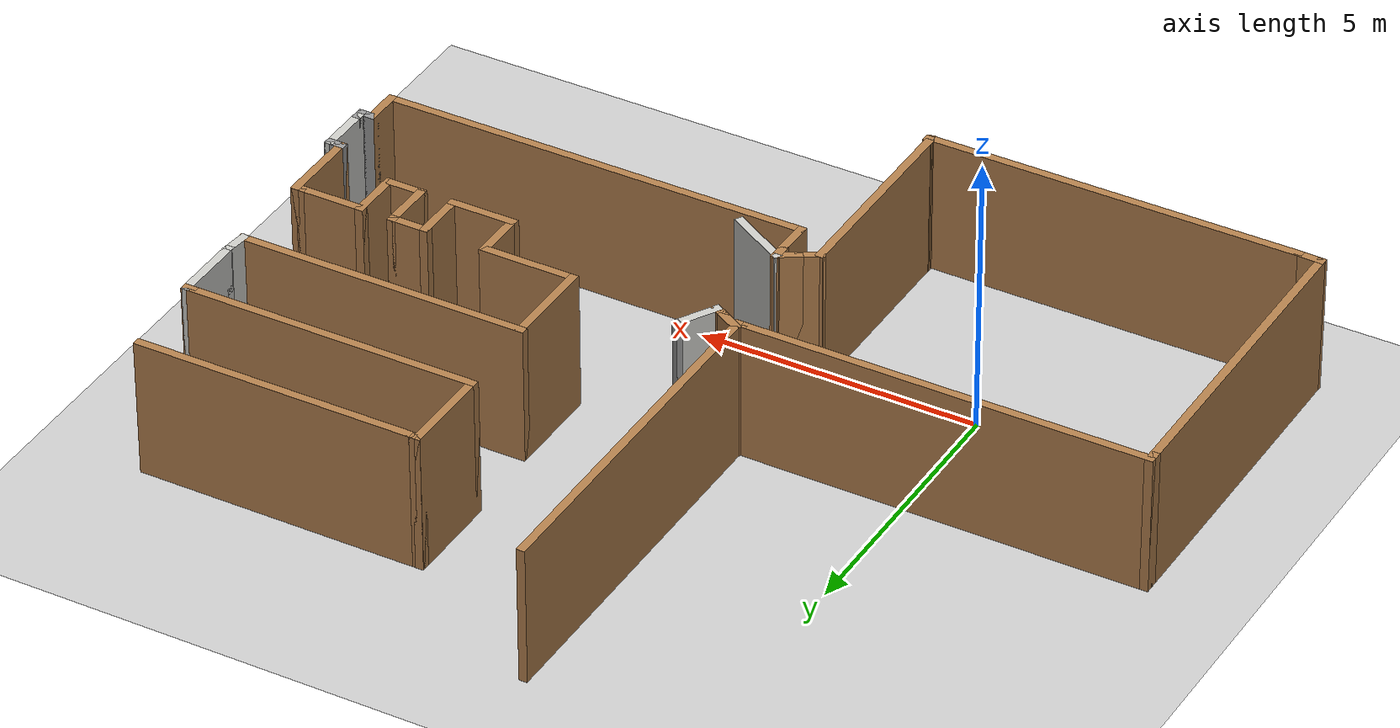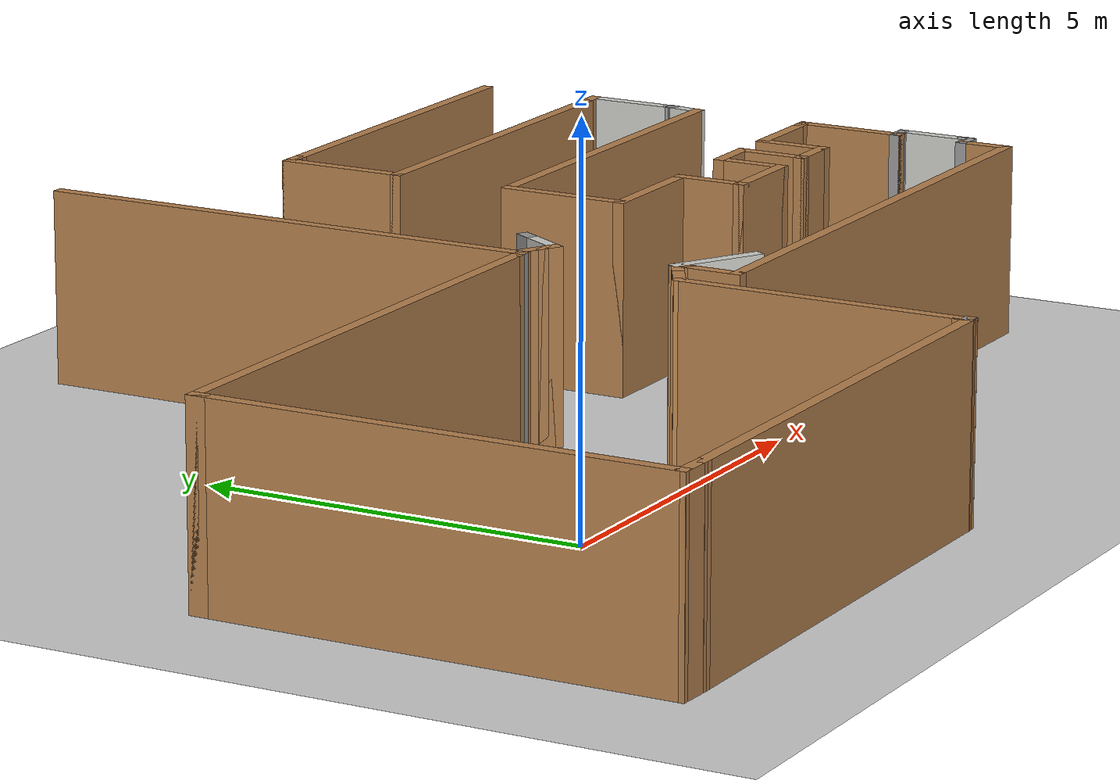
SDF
<sdf version="1.6">
 <world name="default">
  <model name="ground_plane">
   <static>1</static>
   <link name="link">
    <collision name="collision">
     <geometry><plane><normal>0 0 1</normal><size>100 100</size></plane></geometry>
     <surface>
      <contact><collide_bitmask>65535</collide_bitmask></contact>
      <friction><ode><mu>100</mu><mu2>50</mu2></ode></friction>
     </surface>
    </collision>
    <visual name="visual">
     <cast_shadows>0</cast_shadows>
     <geometry><plane><normal>0 0 1</normal><size>100 100</size></plane></geometry>
     <material>
      <script><uri>file://media/materials/scripts/gazebo.material</uri><name>Gazebo/Grey</name></script>
     </material>
    </visual>
   </link>
  </model>
  <model name="ecst_v3">
   <pose>3.45571 9.45141 0 0 0 -1.5708</pose>
   <link name="Wall_0">
    <collision name="Wall_0_Collision">
     <geometry><box><size>5.25 0.15 2.5</size></box></geometry>
     <pose>0 0 1.25 0 -0 0</pose>
    </collision>
    <visual name="Wall_0_Visual">
     <pose>0 0 1.25 0 -0 0</pose>
     <geometry><box><size>5.25 0.15 2.5</size></box></geometry>
     <material>
      <script><uri>file://media/materials/scripts/gazebo.material</uri><name>Gazebo/Wood</name></script>
      <ambient>1 1 1 1</ambient>
     </material>
     <meta><layer>0</layer></meta>
    </visual>
    <pose>5.21294 4.93605 0 0 -0 -1.5708</pose>
   </link>
   <link name="Wall_1">
    <collision name="Wall_1_Collision">
     <geometry><box><size>1.75 0.15 2.5</size></box></geometry>
     <pose>0 0 1.25 0 -0 0</pose>
    </collision>
    <visual name="Wall_1_Visual">
     <pose>0 0 1.25 0 -0 0</pose>
     <geometry><box><size>1.75 0.15 2.5</size></box></geometry>
     <material>
      <script><uri>file://media/materials/scripts/gazebo.material</uri><name>Gazebo/Wood</name></script>
      <ambient>1 1 1 1</ambient>
     </material>
     <meta><layer>0</layer></meta>
    </visual>
    <pose>6.01294 2.38605 0 0 -0 0</pose>
   </link>
   <link name="Wall_10">
    <collision name="Wall_10_Collision">
     <geometry><box><size>1.25 0.15 2.5</size></box></geometry>
     <pose>0 0 1.25 0 -0 0</pose>
    </collision>
    <visual name="Wall_10_Visual">
     <pose>0 0 1.25 0 -0 0</pose>
     <geometry><box><size>1.25 0.15 2.5</size></box></geometry>
     <material>
      <script><uri>file://media/materials/scripts/gazebo.material</uri><name>Gazebo/Wood</name></script>
      <ambient>1 1 1 1</ambient>
     </material>
     <meta><layer>0</layer></meta>
    </visual>
    <pose>6.81294 6.83605 0 0 -0 1.5708</pose>
   </link>
   <link name="Wall_11">
    <collision name="Wall_11_Collision">
     <geometry><box><size>0.25 0.15 2.5</size></box></geometry>
     <pose>0 0 1.25 0 -0 0</pose>
    </collision>
    <visual name="Wall_11_Visual">
     <pose>0 0 1.25 0 -0 0</pose>
     <geometry><box><size>0.25 0.15 2.5</size></box></geometry>
     <material>
      <script><uri>file://media/materials/scripts/gazebo.material</uri><name>Gazebo/Wood</name></script>
      <ambient>1 1 1 1</ambient>
     </material>
     <meta><layer>0</layer></meta>
    </visual>
    <pose>6.81294 7.43605 0 0 -0 1.5708</pose>
   </link>
   <link name="Wall_110">
    <collision name="Wall_110_Collision">
     <geometry><box><size>5 0.15 2.5</size></box></geometry>
     <pose>0 0 1.25 0 -0 0</pose>
    </collision>
    <visual name="Wall_110_Visual">
     <pose>0 0 1.25 0 -0 0</pose>
     <geometry><box><size>5 0.15 2.5</size></box></geometry>
     <material>
      <script><uri>file://media/materials/scripts/gazebo.material</uri><name>Gazebo/Wood</name></script>
      <ambient>1 1 1 1</ambient>
     </material>
     <meta><layer>0</layer></meta>
    </visual>
    <pose>2.02936 4.95351 0 0 -0 -1.5708</pose>
   </link>
   <link name="Wall_113">
    <collision name="Wall_113_Collision">
     <geometry><box><size>0.25 0.15 2.5</size></box></geometry>
     <pose>0 0 1.25 0 -0 0</pose>
    </collision>
    <visual name="Wall_113_Visual">
     <pose>0 0 1.25 0 -0 0</pose>
     <geometry><box><size>0.25 0.15 2.5</size></box></geometry>
     <material>
      <script><uri>file://media/materials/scripts/gazebo.material</uri><name>Gazebo/Wood</name></script>
      <ambient>1 1 1 1</ambient>
     </material>
     <meta><layer>0</layer></meta>
    </visual>
    <pose>2.02936 2.47851 0 0 -0 -1.5708</pose>
   </link>
   <link name="Wall_114">
    <collision name="Wall_114_Collision">
     <geometry><box><size>0.25 0.15 2.5</size></box></geometry>
     <pose>0 0 1.25 0 -0 0</pose>
    </collision>
    <visual name="Wall_114_Visual">
     <pose>0 0 1.25 0 -0 0</pose>
     <geometry><box><size>0.25 0.15 2.5</size></box></geometry>
     <material>
      <script><uri>file://media/materials/scripts/gazebo.material</uri><name>Gazebo/Wood</name></script>
      <ambient>1 1 1 1</ambient>
     </material>
     <meta><layer>0</layer></meta>
    </visual>
    <pose>2.02936 2.37851 0 0 -0 -1.5708</pose>
   </link>
   <link name="Wall_115">
    <collision name="Wall_115_Collision">
     <geometry><box><size>1.75 0.15 2.5</size></box></geometry>
     <pose>0 0 1.25 0 -0 0</pose>
    </collision>
    <visual name="Wall_115_Visual">
     <pose>0 0 1.25 0 -0 0</pose>
     <geometry><box><size>1.75 0.15 2.5</size></box></geometry>
     <material>
      <script><uri>file://media/materials/scripts/gazebo.material</uri><name>Gazebo/Wood</name></script>
      <ambient>1 1 1 1</ambient>
     </material>
     <meta><layer>0</layer></meta>
    </visual>
    <pose>2.82936 2.32851 0 0 -0 0</pose>
   </link>
   <link name="Wall_116">
    <collision name="Wall_116_Collision">
     <geometry><box><size>5.25 0.15 2.5</size></box></geometry>
     <pose>0 0 1.25 0 -0 0</pose>
    </collision>
    <visual name="Wall_116_Visual">
     <pose>0 0 1.25 0 -0 0</pose>
     <geometry><box><size>5.25 0.15 2.5</size></box></geometry>
     <material>
      <script><uri>file://media/materials/scripts/gazebo.material</uri><name>Gazebo/Wood</name></script>
      <ambient>1 1 1 1</ambient>
     </material>
     <meta><layer>0</layer></meta>
    </visual>
    <pose>3.62936 4.87851 0 0 -0 1.5708</pose>
   </link>
   <link name="Wall_117">
    <collision name="Wall_117_Collision">
     <geometry><box><size>0.25 0.15 2.5</size></box></geometry>
     <pose>0 0 1.25 0 -0 0</pose>
    </collision>
    <visual name="Wall_117_Visual">
     <pose>0 0 1.25 0 -0 0</pose>
     <geometry><box><size>0.25 0.15 2.5</size></box></geometry>
     <material>
      <script><uri>file://media/materials/scripts/gazebo.material</uri><name>Gazebo/Wood</name></script>
      <ambient>1 1 1 1</ambient>
     </material>
     <meta><layer>0</layer></meta>
    </visual>
    <pose>3.62936 7.47851 0 0 -0 1.5708</pose>
   </link>
   <link name="Wall_118">
    <collision name="Wall_118_Collision">
     <geometry><box><size>1.25 0.15 2.5</size></box></geometry>
     <pose>0 0 1.25 0 -0 0</pose>
    </collision>
    <visual name="Wall_118_Visual">
     <pose>0 0 1.25 0 -0 0</pose>
     <geometry><box><size>1.25 0.15 2.5</size></box></geometry>
     <material>
      <script><uri>file://media/materials/scripts/gazebo.material</uri><name>Gazebo/CeilingTiled</name></script>
      <ambient>1 1 1 1</ambient>
     </material>
     <meta><layer>0</layer></meta>
    </visual>
    <pose>4.17936 7.52851 0 0 -0 0</pose>
   </link>
   <link name="Wall_119">
    <collision name="Wall_119_Collision">
     <geometry><box><size>0.25 0.15 2.5</size></box></geometry>
     <pose>0 0 1.25 0 -0 0</pose>
    </collision>
    <visual name="Wall_119_Visual">
     <pose>0 0 1.25 0 -0 0</pose>
     <geometry><box><size>0.25 0.15 2.5</size></box></geometry>
     <material>
      <script><uri>file://media/materials/scripts/gazebo.material</uri><name>Gazebo/CeilingTiled</name></script>
      <ambient>1 1 1 1</ambient>
     </material>
     <meta><layer>0</layer></meta>
    </visual>
    <pose>4.77936 7.52851 0 0 -0 0</pose>
   </link>
   <link name="Wall_12">
    <collision name="Wall_12_Collision">
     <geometry><box><size>1.5 0.15 2.5</size></box></geometry>
     <pose>0 0 1.25 0 -0 0</pose>
    </collision>
    <visual name="Wall_12_Visual">
     <pose>0 0 1.25 0 -0 0</pose>
     <geometry><box><size>1.5 0.15 2.5</size></box></geometry>
     <material>
      <script><uri>file://media/materials/scripts/gazebo.material</uri><name>Gazebo/Wood</name></script>
      <ambient>1 1 1 1</ambient>
     </material>
     <meta><layer>0</layer></meta>
    </visual>
    <pose>7.48794 7.48605 0 0 -0 0</pose>
   </link>
   <link name="Wall_120">
    <collision name="Wall_120_Collision">
     <geometry><box><size>0.15 0.15 2.5</size></box></geometry>
     <pose>0 0 1.25 0 -0 0</pose>
    </collision>
    <visual name="Wall_120_Visual">
     <pose>0 0 1.25 0 -0 0</pose>
     <geometry><box><size>0.15 0.15 2.5</size></box></geometry>
     <material>
      <script><uri>file://media/materials/scripts/gazebo.material</uri><name>Gazebo/Grey</name></script>
      <ambient>1 1 1 1</ambient>
     </material>
     <meta><layer>0</layer></meta>
    </visual>
    <pose>4.82936 7.52851 0 0 -0 0</pose>
   </link>
   <link name="Wall_121">
    <collision name="Wall_121_Collision">
     <geometry><box><size>0.15 0.15 2.5</size></box></geometry>
     <pose>0 0 1.25 0 -0 0</pose>
    </collision>
    <visual name="Wall_121_Visual">
     <pose>0 0 1.25 0 -0 0</pose>
     <geometry><box><size>0.15 0.15 2.5</size></box></geometry>
     <material>
      <script><uri>file://media/materials/scripts/gazebo.material</uri><name>Gazebo/CeilingTiled</name></script>
      <ambient>1 1 1 1</ambient>
     </material>
     <meta><layer>0</layer></meta>
    </visual>
    <pose>4.82936 7.52851 0 0 -0 0</pose>
   </link>
   <link name="Wall_122">
    <collision name="Wall_122_Collision">
     <geometry><box><size>0.535922 0.15 2.5</size></box></geometry>
     <pose>0 0 1.25 0 -0 0</pose>
    </collision>
    <visual name="Wall_122_Visual">
     <pose>0 0 1.25 0 -0 0</pose>
     <geometry><box><size>0.535922 0.15 2.5</size></box></geometry>
     <material>
      <script><uri>file://media/materials/scripts/gazebo.material</uri><name>Gazebo/CeilingTiled</name></script>
      <ambient>1 1 1 1</ambient>
     </material>
     <meta><layer>0</layer></meta>
    </visual>
    <pose>5.02115 7.50728 0 0 -0 -0.110265</pose>
   </link>
   <link name="Wall_126">
    <collision name="Wall_126_Collision">
     <geometry><box><size>0.15 0.15 2.5</size></box></geometry>
     <pose>0 0 1.25 0 -0 0</pose>
    </collision>
    <visual name="Wall_126_Visual">
     <pose>0 0 1.25 0 -0 0</pose>
     <geometry><box><size>0.15 0.15 2.5</size></box></geometry>
     <material>
      <script><uri>file://media/materials/scripts/gazebo.material</uri><name>Gazebo/Grey</name></script>
      <ambient>1 1 1 1</ambient>
     </material>
     <meta><layer>0</layer></meta>
    </visual>
    <pose>7.01294 -0.483173 0 0 -0 0</pose>
   </link>
   <link name="Wall_127">
    <collision name="Wall_127_Collision">
     <geometry><box><size>0.15 0.15 2.5</size></box></geometry>
     <pose>0 0 1.25 0 -0 0</pose>
    </collision>
    <visual name="Wall_127_Visual">
     <pose>0 0 1.25 0 -0 0</pose>
     <geometry><box><size>0.15 0.15 2.5</size></box></geometry>
     <material>
      <script><uri>file://media/materials/scripts/gazebo.material</uri><name>Gazebo/Grey</name></script>
      <ambient>1 1 1 1</ambient>
     </material>
     <meta><layer>0</layer></meta>
    </visual>
    <pose>7.01294 -0.483173 0 0 -0 0</pose>
   </link>
   <link name="Wall_128">
    <collision name="Wall_128_Collision">
     <geometry><box><size>0.15 0.15 2.5</size></box></geometry>
     <pose>0 0 1.25 0 -0 0</pose>
    </collision>
    <visual name="Wall_128_Visual">
     <pose>0 0 1.25 0 -0 0</pose>
     <geometry><box><size>0.15 0.15 2.5</size></box></geometry>
     <material>
      <script><uri>file://media/materials/scripts/gazebo.material</uri><name>Gazebo/Grey</name></script>
      <ambient>1 1 1 1</ambient>
     </material>
     <meta><layer>0</layer></meta>
    </visual>
    <pose>7.01294 -0.483173 0 0 -0 0</pose>
   </link>
   <link name="Wall_129">
    <collision name="Wall_129_Collision">
     <geometry><box><size>0.25 0.15 2.5</size></box></geometry>
     <pose>0 0 1.25 0 -0 0</pose>
    </collision>
    <visual name="Wall_129_Visual">
     <pose>0 0 1.25 0 -0 0</pose>
     <geometry><box><size>0.25 0.15 2.5</size></box></geometry>
     <material>
      <script><uri>file://media/materials/scripts/gazebo.material</uri><name>Gazebo/Wood</name></script>
      <ambient>1 1 1 1</ambient>
     </material>
     <meta><layer>0</layer></meta>
    </visual>
    <pose>6.96294 -0.483173 0 0 -0 3.14159</pose>
   </link>
   <link name="Wall_13">
    <collision name="Wall_13_Collision">
     <geometry><box><size>0.25 0.15 2.5</size></box></geometry>
     <pose>0 0 1.25 0 -0 0</pose>
    </collision>
    <visual name="Wall_13_Visual">
     <pose>0 0 1.25 0 -0 0</pose>
     <geometry><box><size>0.25 0.15 2.5</size></box></geometry>
     <material>
      <script><uri>file://media/materials/scripts/gazebo.material</uri><name>Gazebo/Grey</name></script>
      <ambient>1 1 1 1</ambient>
     </material>
     <meta><layer>0</layer></meta>
    </visual>
    <pose>8.16294 7.53605 0 0 -0 1.5708</pose>
   </link>
   <link name="Wall_130">
    <collision name="Wall_130_Collision">
     <geometry><box><size>0.16 0.15 2.5</size></box></geometry>
     <pose>0 0 1.25 0 -0 0</pose>
    </collision>
    <visual name="Wall_130_Visual">
     <pose>0 0 1.25 0 -0 0</pose>
     <geometry><box><size>0.16 0.15 2.5</size></box></geometry>
     <material>
      <script><uri>file://media/materials/scripts/gazebo.material</uri><name>Gazebo/Grey</name></script>
      <ambient>1 1 1 1</ambient>
     </material>
     <meta><layer>0</layer></meta>
    </visual>
    <pose>6.91794 -0.483173 0 0 -0 0</pose>
   </link>
   <link name="Wall_131">
    <collision name="Wall_131_Collision">
     <geometry><box><size>0.5 0.15 2.5</size></box></geometry>
     <pose>0 0 1.25 0 -0 0</pose>
    </collision>
    <visual name="Wall_131_Visual">
     <pose>0 0 1.25 0 -0 0</pose>
     <geometry><box><size>0.5 0.15 2.5</size></box></geometry>
     <material>
      <script><uri>file://media/materials/scripts/gazebo.material</uri><name>Gazebo/Wood</name></script>
      <ambient>1 1 1 1</ambient>
     </material>
     <meta><layer>0</layer></meta>
    </visual>
    <pose>7.01044 -0.331619 0 0 -0 1.0472</pose>
   </link>
   <link name="Wall_132">
    <collision name="Wall_132_Collision">
     <geometry><box><size>0.25 0.15 2.5</size></box></geometry>
     <pose>0 0 1.25 0 -0 0</pose>
    </collision>
    <visual name="Wall_132_Visual">
     <pose>0 0 1.25 0 -0 0</pose>
     <geometry><box><size>0.25 0.15 2.5</size></box></geometry>
     <material>
      <script><uri>file://media/materials/scripts/gazebo.material</uri><name>Gazebo/Wood</name></script>
      <ambient>1 1 1 1</ambient>
     </material>
     <meta><layer>0</layer></meta>
    </visual>
    <pose>7.12294 -0.136763 0 0 -0 1.0472</pose>
   </link>
   <link name="Wall_133">
    <collision name="Wall_133_Collision">
     <geometry><box><size>0.25 0.15 2.5</size></box></geometry>
     <pose>0 0 1.25 0 -0 0</pose>
    </collision>
    <visual name="Wall_133_Visual">
     <pose>0 0 1.25 0 -0 0</pose>
     <geometry><box><size>0.25 0.15 2.5</size></box></geometry>
     <material>
      <script><uri>file://media/materials/scripts/gazebo.material</uri><name>Gazebo/Wood</name></script>
      <ambient>1 1 1 1</ambient>
     </material>
     <meta><layer>0</layer></meta>
    </visual>
    <pose>7.17294 -0.050161 0 0 -0 1.0472</pose>
   </link>
   <link name="Wall_134">
    <collision name="Wall_134_Collision">
     <geometry><box><size>0.75 0.15 2.5</size></box></geometry>
     <pose>0 0 1.25 0 -0 0</pose>
    </collision>
    <visual name="Wall_134_Visual">
     <pose>0 0 1.25 0 -0 0</pose>
     <geometry><box><size>0.75 0.15 2.5</size></box></geometry>
     <material>
      <script><uri>file://media/materials/scripts/gazebo.material</uri><name>Gazebo/CeilingTiled</name></script>
      <ambient>1 1 1 1</ambient>
     </material>
     <meta><layer>0</layer></meta>
    </visual>
    <pose>6.93813 0.14314 0 0 -0 2.61799</pose>
   </link>
   <link name="Wall_135">
    <collision name="Wall_135_Collision">
     <geometry><box><size>0.25 0.15 2.5</size></box></geometry>
     <pose>0 0 1.25 0 -0 0</pose>
    </collision>
    <visual name="Wall_135_Visual">
     <pose>0 0 1.25 0 -0 0</pose>
     <geometry><box><size>0.25 0.15 2.5</size></box></geometry>
     <material>
      <script><uri>file://media/materials/scripts/gazebo.material</uri><name>Gazebo/Grey</name></script>
      <ambient>1 1 1 1</ambient>
     </material>
     <meta><layer>0</layer></meta>
    </visual>
    <pose>6.63502 0.318141 0 0 -0 2.61799</pose>
   </link>
   <link name="Wall_14">
    <collision name="Wall_14_Collision">
     <geometry><box><size>0.25 0.15 2.5</size></box></geometry>
     <pose>0 0 1.25 0 -0 0</pose>
    </collision>
    <visual name="Wall_14_Visual">
     <pose>0 0 1.25 0 -0 0</pose>
     <geometry><box><size>0.25 0.15 2.5</size></box></geometry>
     <material>
      <script><uri>file://media/materials/scripts/gazebo.material</uri><name>Gazebo/Grey</name></script>
      <ambient>1 1 1 1</ambient>
     </material>
     <meta><layer>0</layer></meta>
    </visual>
    <pose>8.16294 7.63605 0 0 -0 1.5708</pose>
   </link>
   <link name="Wall_15">
    <collision name="Wall_15_Collision">
     <geometry><box><size>1 0.15 2.5</size></box></geometry>
     <pose>0 0 1.25 0 -0 0</pose>
    </collision>
    <visual name="Wall_15_Visual">
     <pose>0 0 1.25 0 -0 0</pose>
     <geometry><box><size>1 0.15 2.5</size></box></geometry>
     <material>
      <script><uri>file://media/materials/scripts/gazebo.material</uri><name>Gazebo/CeilingTiled</name></script>
      <ambient>1 1 1 1</ambient>
     </material>
     <meta><layer>0</layer></meta>
    </visual>
    <pose>8.58794 7.68605 0 0 -0 0</pose>
   </link>
   <link name="Wall_16">
    <collision name="Wall_16_Collision">
     <geometry><box><size>0.25 0.15 2.5</size></box></geometry>
     <pose>0 0 1.25 0 -0 0</pose>
    </collision>
    <visual name="Wall_16_Visual">
     <pose>0 0 1.25 0 -0 0</pose>
     <geometry><box><size>0.25 0.15 2.5</size></box></geometry>
     <material>
      <script><uri>file://media/materials/scripts/gazebo.material</uri><name>Gazebo/Grey</name></script>
      <ambient>1 1 1 1</ambient>
     </material>
     <meta><layer>0</layer></meta>
    </visual>
    <pose>9.06294 7.68605 0 0 -0 0</pose>
   </link>
   <link name="Wall_17">
    <collision name="Wall_17_Collision">
     <geometry><box><size>0.25 0.15 2.5</size></box></geometry>
     <pose>0 0 1.25 0 -0 0</pose>
    </collision>
    <visual name="Wall_17_Visual">
     <pose>0 0 1.25 0 -0 0</pose>
     <geometry><box><size>0.25 0.15 2.5</size></box></geometry>
     <material>
      <script><uri>file://media/materials/scripts/gazebo.material</uri><name>Gazebo/Grey</name></script>
      <ambient>1 1 1 1</ambient>
     </material>
     <meta><layer>0</layer></meta>
    </visual>
    <pose>9.11294 7.63605 0 0 -0 -1.5708</pose>
   </link>
   <link name="Wall_18">
    <collision name="Wall_18_Collision">
     <geometry><box><size>0.25 0.15 2.5</size></box></geometry>
     <pose>0 0 1.25 0 -0 0</pose>
    </collision>
    <visual name="Wall_18_Visual">
     <pose>0 0 1.25 0 -0 0</pose>
     <geometry><box><size>0.25 0.15 2.5</size></box></geometry>
     <material>
      <script><uri>file://media/materials/scripts/gazebo.material</uri><name>Gazebo/Grey</name></script>
      <ambient>1 1 1 1</ambient>
     </material>
     <meta><layer>0</layer></meta>
    </visual>
    <pose>9.11294 7.53605 0 0 -0 -1.5708</pose>
   </link>
   <link name="Wall_19">
    <collision name="Wall_19_Collision">
     <geometry><box><size>0.75 0.15 2.5</size></box></geometry>
     <pose>0 0 1.25 0 -0 0</pose>
    </collision>
    <visual name="Wall_19_Visual">
     <pose>0 0 1.25 0 -0 0</pose>
     <geometry><box><size>0.75 0.15 2.5</size></box></geometry>
     <material>
      <script><uri>file://media/materials/scripts/gazebo.material</uri><name>Gazebo/Wood</name></script>
      <ambient>1 1 1 1</ambient>
     </material>
     <meta><layer>0</layer></meta>
    </visual>
    <pose>9.41294 7.48605 0 0 -0 0</pose>
   </link>
   <link name="Wall_2">
    <collision name="Wall_2_Collision">
     <geometry><box><size>1.75 0.15 2.5</size></box></geometry>
     <pose>0 0 1.25 0 -0 0</pose>
    </collision>
    <visual name="Wall_2_Visual">
     <pose>0 0 1.25 0 -0 0</pose>
     <geometry><box><size>1.75 0.15 2.5</size></box></geometry>
     <material>
      <script><uri>file://media/materials/scripts/gazebo.material</uri><name>Gazebo/Wood</name></script>
      <ambient>1 1 1 1</ambient>
     </material>
     <meta><layer>0</layer></meta>
    </visual>
    <pose>6.81294 3.18605 0 0 -0 1.5708</pose>
   </link>
   <link name="Wall_20">
    <collision name="Wall_20_Collision">
     <geometry><box><size>7.75 0.15 2.5</size></box></geometry>
     <pose>0 0 1.25 0 -0 0</pose>
    </collision>
    <visual name="Wall_20_Visual">
     <pose>0 0 1.25 0 -0 0</pose>
     <geometry><box><size>7.75 0.15 2.5</size></box></geometry>
     <material>
      <script><uri>file://media/materials/scripts/gazebo.material</uri><name>Gazebo/Wood</name></script>
      <ambient>1 1 1 1</ambient>
     </material>
     <meta><layer>0</layer></meta>
    </visual>
    <pose>9.71294 3.68605 0 0 -0 -1.5708</pose>
   </link>
   <link name="Wall_21">
    <collision name="Wall_21_Collision">
     <geometry><box><size>0.75 0.15 2.5</size></box></geometry>
     <pose>0 0 1.25 0 -0 0</pose>
    </collision>
    <visual name="Wall_21_Visual">
     <pose>0 0 1.25 0 -0 0</pose>
     <geometry><box><size>0.75 0.15 2.5</size></box></geometry>
     <material>
      <script><uri>file://media/materials/scripts/gazebo.material</uri><name>Gazebo/Wood</name></script>
      <ambient>1 1 1 1</ambient>
     </material>
     <meta><layer>0</layer></meta>
    </visual>
    <pose>9.41294 -0.113953 0 0 -0 3.14159</pose>
   </link>
   <link name="Wall_22">
    <collision name="Wall_22_Collision">
     <geometry><box><size>0.25 0.15 2.5</size></box></geometry>
     <pose>0 0 1.25 0 -0 0</pose>
    </collision>
    <visual name="Wall_22_Visual">
     <pose>0 0 1.25 0 -0 0</pose>
     <geometry><box><size>0.25 0.15 2.5</size></box></geometry>
     <material>
      <script><uri>file://media/materials/scripts/gazebo.material</uri><name>Gazebo/Wood</name></script>
      <ambient>1 1 1 1</ambient>
     </material>
     <meta><layer>0</layer></meta>
    </visual>
    <pose>9.06294 -0.113953 0 0 -0 3.14159</pose>
   </link>
   <link name="Wall_23">
    <collision name="Wall_23_Collision">
     <geometry><box><size>0.25 0.15 2.5</size></box></geometry>
     <pose>0 0 1.25 0 -0 0</pose>
    </collision>
    <visual name="Wall_23_Visual">
     <pose>0 0 1.25 0 -0 0</pose>
     <geometry><box><size>0.25 0.15 2.5</size></box></geometry>
     <material>
      <script><uri>file://media/materials/scripts/gazebo.material</uri><name>Gazebo/Wood</name></script>
      <ambient>1 1 1 1</ambient>
     </material>
     <meta><layer>0</layer></meta>
    </visual>
    <pose>8.96294 -0.113953 0 0 -0 3.14159</pose>
   </link>
   <link name="Wall_24">
    <collision name="Wall_24_Collision">
     <geometry><box><size>1.25 0.15 2.5</size></box></geometry>
     <pose>0 0 1.25 0 -0 0</pose>
    </collision>
    <visual name="Wall_24_Visual">
     <pose>0 0 1.25 0 -0 0</pose>
     <geometry><box><size>1.25 0.15 2.5</size></box></geometry>
     <material>
      <script><uri>file://media/materials/scripts/gazebo.material</uri><name>Gazebo/CeilingTiled</name></script>
      <ambient>1 1 1 1</ambient>
     </material>
     <meta><layer>0</layer></meta>
    </visual>
    <pose>9.18794 0.36236 0 0 -0 1.0472</pose>
   </link>
   <link name="Wall_26">
    <collision name="Wall_26_Collision">
     <geometry><box><size>0.5 0.15 2.5</size></box></geometry>
     <pose>0 0 1.25 0 -0 0</pose>
    </collision>
    <visual name="Wall_26_Visual">
     <pose>0 0 1.25 0 -0 0</pose>
     <geometry><box><size>0.5 0.15 2.5</size></box></geometry>
     <material>
      <script><uri>file://media/materials/scripts/gazebo.material</uri><name>Gazebo/Wood</name></script>
      <ambient>1 1 1 1</ambient>
     </material>
     <meta><layer>0</layer></meta>
    </visual>
    <pose>9.00044 -0.265508 0 0 -0 -1.0472</pose>
   </link>
   <link name="Wall_27">
    <collision name="Wall_27_Collision">
     <geometry><box><size>0.5 0.15 2.5</size></box></geometry>
     <pose>0 0 1.25 0 -0 0</pose>
    </collision>
    <visual name="Wall_27_Visual">
     <pose>0 0 1.25 0 -0 0</pose>
     <geometry><box><size>0.5 0.15 2.5</size></box></geometry>
     <material>
      <script><uri>file://media/materials/scripts/gazebo.material</uri><name>Gazebo/Wood</name></script>
      <ambient>1 1 1 1</ambient>
     </material>
     <meta><layer>0</layer></meta>
    </visual>
    <pose>9.17544 -0.568617 0 0 -0 -1.0472</pose>
   </link>
   <link name="Wall_28">
    <collision name="Wall_28_Collision">
     <geometry><box><size>3.75 0.15 2.5</size></box></geometry>
     <pose>0 0 1.25 0 -0 0</pose>
    </collision>
    <visual name="Wall_28_Visual">
     <pose>0 0 1.25 0 -0 0</pose>
     <geometry><box><size>3.75 0.15 2.5</size></box></geometry>
     <material>
      <script><uri>file://media/materials/scripts/gazebo.material</uri><name>Gazebo/Wood</name></script>
      <ambient>1 1 1 1</ambient>
     </material>
     <meta><layer>0</layer></meta>
    </visual>
    <pose>11.0629 -0.720171 0 0 -0 0</pose>
   </link>
   <link name="Wall_29">
    <collision name="Wall_29_Collision">
     <geometry><box><size>0.15 0.15 2.5</size></box></geometry>
     <pose>0 0 1.25 0 -0 0</pose>
    </collision>
    <visual name="Wall_29_Visual">
     <pose>0 0 1.25 0 -0 0</pose>
     <geometry><box><size>0.15 0.15 2.5</size></box></geometry>
     <material>
      <script><uri>file://media/materials/scripts/gazebo.material</uri><name>Gazebo/Wood</name></script>
      <ambient>1 1 1 1</ambient>
     </material>
     <meta><layer>0</layer></meta>
    </visual>
    <pose>12.8629 -0.720171 0 0 -0 0</pose>
   </link>
   <link name="Wall_3">
    <collision name="Wall_3_Collision">
     <geometry><box><size>1 0.15 2.5</size></box></geometry>
     <pose>0 0 1.25 0 -0 0</pose>
    </collision>
    <visual name="Wall_3_Visual">
     <pose>0 0 1.25 0 -0 0</pose>
     <geometry><box><size>1 0.15 2.5</size></box></geometry>
     <material>
      <script><uri>file://media/materials/scripts/gazebo.material</uri><name>Gazebo/Wood</name></script>
      <ambient>1 1 1 1</ambient>
     </material>
     <meta><layer>0</layer></meta>
    </visual>
    <pose>7.23794 3.98605 0 0 -0 0</pose>
   </link>
   <link name="Wall_30">
    <collision name="Wall_30_Collision">
     <geometry><box><size>0.266016 0.15 2.5</size></box></geometry>
     <pose>0 0 1.25 0 -0 0</pose>
    </collision>
    <visual name="Wall_30_Visual">
     <pose>0 0 1.25 0 -0 0</pose>
     <geometry><box><size>0.266016 0.15 2.5</size></box></geometry>
     <material>
      <script><uri>file://media/materials/scripts/gazebo.material</uri><name>Gazebo/Wood</name></script>
      <ambient>1 1 1 1</ambient>
     </material>
     <meta><layer>0</layer></meta>
    </visual>
    <pose>12.9205 -0.712652 0 0 -0 0.129981</pose>
   </link>
   <link name="Wall_31">
    <collision name="Wall_31_Collision">
     <geometry><box><size>6.72196 0.15 2.5</size></box></geometry>
     <pose>0 0 1.25 0 -0 0</pose>
    </collision>
    <visual name="Wall_31_Visual">
     <pose>0 0 1.25 0 -0 0</pose>
     <geometry><box><size>6.72196 0.15 2.5</size></box></geometry>
     <material>
      <script><uri>file://media/materials/scripts/gazebo.material</uri><name>Gazebo/Wood</name></script>
      <ambient>1 1 1 1</ambient>
     </material>
     <meta><layer>0</layer></meta>
    </visual>
    <pose>12.978 -4.00615 0 0 -0 -1.5708</pose>
   </link>
   <link name="Wall_32">
    <collision name="Wall_32_Collision">
     <geometry><box><size>0.534835 0.15 2.5</size></box></geometry>
     <pose>0 0 1.25 0 -0 0</pose>
    </collision>
    <visual name="Wall_32_Visual">
     <pose>0 0 1.25 0 -0 0</pose>
     <geometry><box><size>0.534835 0.15 2.5</size></box></geometry>
     <material>
      <script><uri>file://media/materials/scripts/gazebo.material</uri><name>Gazebo/Wood</name></script>
      <ambient>1 1 1 1</ambient>
     </material>
     <meta><layer>0</layer></meta>
    </visual>
    <pose>12.9705 -7.4909 0 0 -0 -1.60988</pose>
   </link>
   <link name="Wall_38">
    <collision name="Wall_38_Collision">
     <geometry><box><size>0.15 0.15 2.5</size></box></geometry>
     <pose>0 0 1.25 0 -0 0</pose>
    </collision>
    <visual name="Wall_38_Visual">
     <pose>0 0 1.25 0 -0 0</pose>
     <geometry><box><size>0.15 0.15 2.5</size></box></geometry>
     <material>
      <script><uri>file://media/materials/scripts/gazebo.material</uri><name>Gazebo/Wood</name></script>
      <ambient>1 1 1 1</ambient>
     </material>
     <meta><layer>0</layer></meta>
    </visual>
    <pose>12.9527 -0.687517 0 0 -0 0</pose>
   </link>
   <link name="Wall_4">
    <collision name="Wall_4_Collision">
     <geometry><box><size>1.25 0.15 2.5</size></box></geometry>
     <pose>0 0 1.25 0 -0 0</pose>
    </collision>
    <visual name="Wall_4_Visual">
     <pose>0 0 1.25 0 -0 0</pose>
     <geometry><box><size>1.25 0.15 2.5</size></box></geometry>
     <material>
      <script><uri>file://media/materials/scripts/gazebo.material</uri><name>Gazebo/Wood</name></script>
      <ambient>1 1 1 1</ambient>
     </material>
     <meta><layer>0</layer></meta>
    </visual>
    <pose>7.66294 4.53605 0 0 -0 1.5708</pose>
   </link>
   <link name="Wall_42">
    <collision name="Wall_42_Collision">
     <geometry><box><size>0.15 0.15 2.5</size></box></geometry>
     <pose>0 0 1.25 0 -0 0</pose>
    </collision>
    <visual name="Wall_42_Visual">
     <pose>0 0 1.25 0 -0 0</pose>
     <geometry><box><size>0.15 0.15 2.5</size></box></geometry>
     <material>
      <script><uri>file://media/materials/scripts/gazebo.material</uri><name>Gazebo/Grey</name></script>
      <ambient>0 0 0 1</ambient>
     </material>
     <meta><layer>0</layer></meta>
    </visual>
    <pose>12.9678 -0.702555 0 0 -0 0</pose>
   </link>
   <link name="Wall_45">
    <collision name="Wall_45_Collision">
     <geometry><box><size>6 0.15 2.5</size></box></geometry>
     <pose>0 0 1.25 0 -0 0</pose>
    </collision>
    <visual name="Wall_45_Visual">
     <pose>0 0 1.25 0 -0 0</pose>
     <geometry><box><size>6 0.15 2.5</size></box></geometry>
     <material>
      <script><uri>file://media/materials/scripts/gazebo.material</uri><name>Gazebo/Wood</name></script>
      <ambient>1 1 1 1</ambient>
     </material>
     <meta><layer>0</layer></meta>
    </visual>
    <pose>10.0379 -7.68317 0 0 -0 3.14159</pose>
   </link>
   <link name="Wall_46">
    <collision name="Wall_46_Collision">
     <geometry><box><size>0.25 0.15 2.5</size></box></geometry>
     <pose>0 0 1.25 0 -0 0</pose>
    </collision>
    <visual name="Wall_46_Visual">
     <pose>0 0 1.25 0 -0 0</pose>
     <geometry><box><size>0.25 0.15 2.5</size></box></geometry>
     <material>
      <script><uri>file://media/materials/scripts/gazebo.material</uri><name>Gazebo/Wood</name></script>
      <ambient>1 1 1 1</ambient>
     </material>
     <meta><layer>0</layer></meta>
    </visual>
    <pose>7.06294 -7.68317 0 0 -0 3.14159</pose>
   </link>
   <link name="Wall_47">
    <collision name="Wall_47_Collision">
     <geometry><box><size>7.25 0.15 2.5</size></box></geometry>
     <pose>0 0 1.25 0 -0 0</pose>
    </collision>
    <visual name="Wall_47_Visual">
     <pose>0 0 1.25 0 -0 0</pose>
     <geometry><box><size>7.25 0.15 2.5</size></box></geometry>
     <material>
      <script><uri>file://media/materials/scripts/gazebo.material</uri><name>Gazebo/Wood</name></script>
      <ambient>1 1 1 1</ambient>
     </material>
     <meta><layer>0</layer></meta>
    </visual>
    <pose>7.01294 -4.13317 0 0 -0 1.5708</pose>
   </link>
   <link name="Wall_48">
    <collision name="Wall_48_Collision">
     <geometry><box><size>0.25 0.15 2.5</size></box></geometry>
     <pose>0 0 1.25 0 -0 0</pose>
    </collision>
    <visual name="Wall_48_Visual">
     <pose>0 0 1.25 0 -0 0</pose>
     <geometry><box><size>0.25 0.15 2.5</size></box></geometry>
     <material>
      <script><uri>file://media/materials/scripts/gazebo.material</uri><name>Gazebo/Wood</name></script>
      <ambient>1 1 1 1</ambient>
     </material>
     <meta><layer>0</layer></meta>
    </visual>
    <pose>7.01294 -0.533174 0 0 -0 1.5708</pose>
   </link>
   <link name="Wall_49">
    <collision name="Wall_49_Collision">
     <geometry><box><size>6.75 0.15 2.5</size></box></geometry>
     <pose>0 0 1.25 0 -0 0</pose>
    </collision>
    <visual name="Wall_49_Visual">
     <pose>0 0 1.25 0 -0 0</pose>
     <geometry><box><size>6.75 0.15 2.5</size></box></geometry>
     <material>
      <script><uri>file://media/materials/scripts/gazebo.material</uri><name>Gazebo/Wood</name></script>
      <ambient>1 1 1 1</ambient>
     </material>
     <meta><layer>0</layer></meta>
    </visual>
    <pose>3.71294 -0.483173 0 0 -0 3.14159</pose>
   </link>
   <link name="Wall_5">
    <collision name="Wall_5_Collision">
     <geometry><box><size>1 0.15 2.5</size></box></geometry>
     <pose>0 0 1.25 0 -0 0</pose>
    </collision>
    <visual name="Wall_5_Visual">
     <pose>0 0 1.25 0 -0 0</pose>
     <geometry><box><size>1 0.15 2.5</size></box></geometry>
     <material>
      <script><uri>file://media/materials/scripts/gazebo.material</uri><name>Gazebo/Wood</name></script>
      <ambient>1 1 1 1</ambient>
     </material>
     <meta><layer>0</layer></meta>
    </visual>
    <pose>7.23794 5.08605 0 0 -0 3.14159</pose>
   </link>
   <link name="Wall_6">
    <collision name="Wall_6_Collision">
     <geometry><box><size>0.75 0.15 2.5</size></box></geometry>
     <pose>0 0 1.25 0 -0 0</pose>
    </collision>
    <visual name="Wall_6_Visual">
     <pose>0 0 1.25 0 -0 0</pose>
     <geometry><box><size>0.75 0.15 2.5</size></box></geometry>
     <material>
      <script><uri>file://media/materials/scripts/gazebo.material</uri><name>Gazebo/Wood</name></script>
      <ambient>1 1 1 1</ambient>
     </material>
     <meta><layer>0</layer></meta>
    </visual>
    <pose>6.81294 5.38605 0 0 -0 1.5708</pose>
   </link>
   <link name="Wall_7">
    <collision name="Wall_7_Collision">
     <geometry><box><size>1 0.15 2.5</size></box></geometry>
     <pose>0 0 1.25 0 -0 0</pose>
    </collision>
    <visual name="Wall_7_Visual">
     <pose>0 0 1.25 0 -0 0</pose>
     <geometry><box><size>1 0.15 2.5</size></box></geometry>
     <material>
      <script><uri>file://media/materials/scripts/gazebo.material</uri><name>Gazebo/Wood</name></script>
      <ambient>1 1 1 1</ambient>
     </material>
     <meta><layer>0</layer></meta>
    </visual>
    <pose>7.23794 5.68605 0 0 -0 0</pose>
   </link>
   <link name="Wall_8">
    <collision name="Wall_8_Collision">
     <geometry><box><size>0.75 0.15 2.5</size></box></geometry>
     <pose>0 0 1.25 0 -0 0</pose>
    </collision>
    <visual name="Wall_8_Visual">
     <pose>0 0 1.25 0 -0 0</pose>
     <geometry><box><size>0.75 0.15 2.5</size></box></geometry>
     <material>
      <script><uri>file://media/materials/scripts/gazebo.material</uri><name>Gazebo/Wood</name></script>
      <ambient>1 1 1 1</ambient>
     </material>
     <meta><layer>0</layer></meta>
    </visual>
    <pose>7.66294 5.98605 0 0 -0 1.5708</pose>
   </link>
   <link name="Wall_9">
    <collision name="Wall_9_Collision">
     <geometry><box><size>1 0.15 2.5</size></box></geometry>
     <pose>0 0 1.25 0 -0 0</pose>
    </collision>
    <visual name="Wall_9_Visual">
     <pose>0 0 1.25 0 -0 0</pose>
     <geometry><box><size>1 0.15 2.5</size></box></geometry>
     <material>
      <script><uri>file://media/materials/scripts/gazebo.material</uri><name>Gazebo/Wood</name></script>
      <ambient>1 1 1 1</ambient>
     </material>
     <meta><layer>0</layer></meta>
    </visual>
    <pose>7.23794 6.28605 0 0 -0 3.14159</pose>
   </link>
   <static>1</static>
  </model>
 </world>
</sdf>
